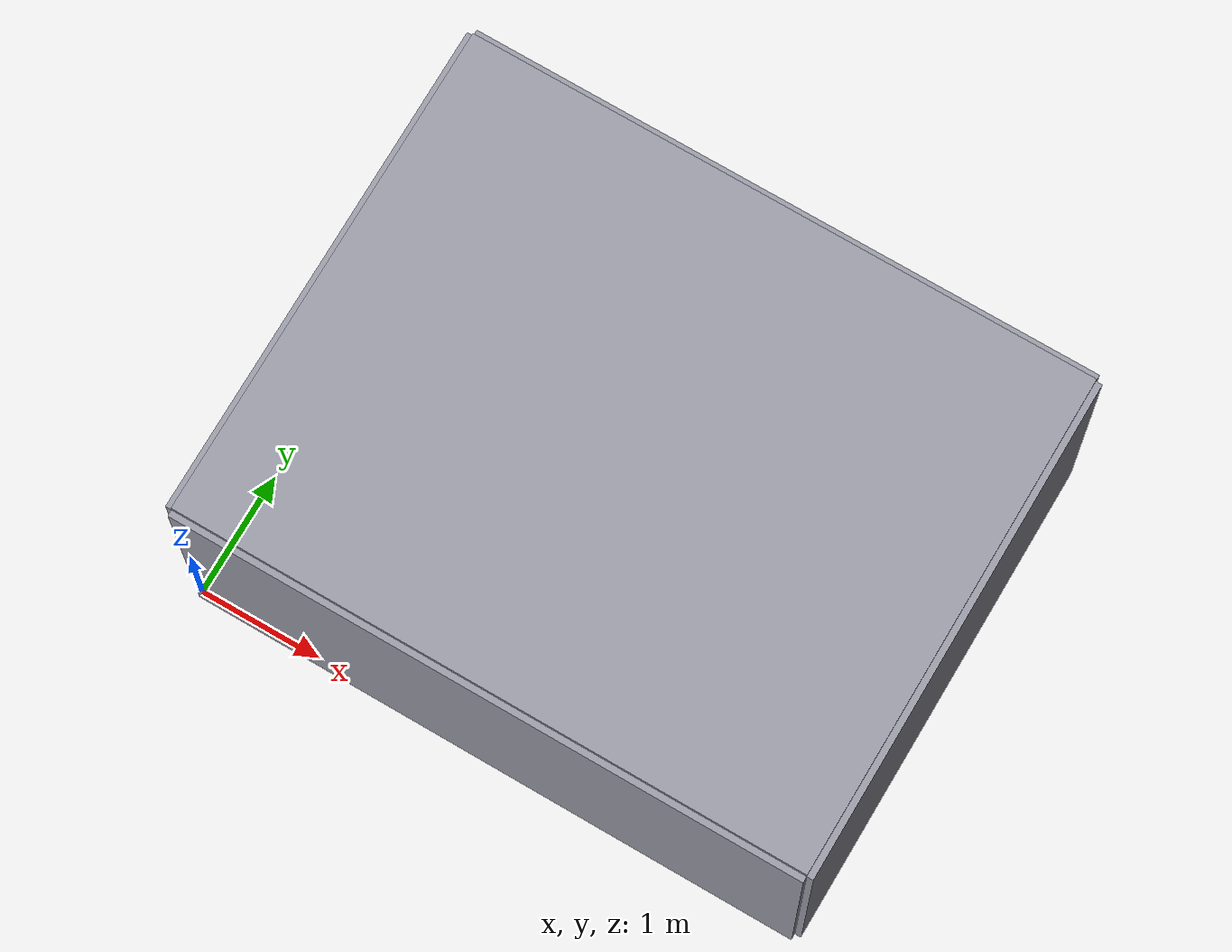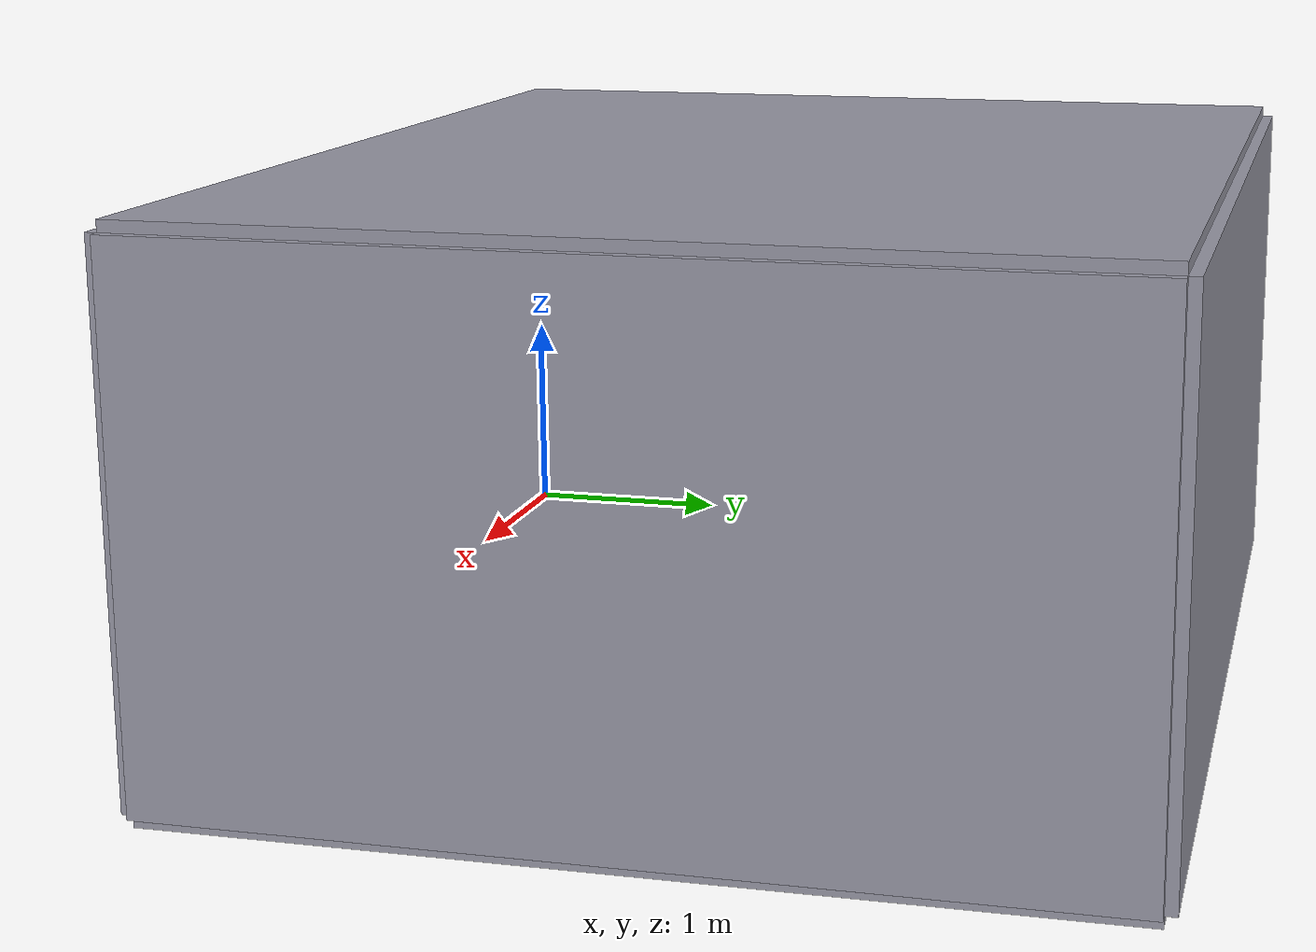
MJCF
<mujoco model="embodied-recon-mini">
  <compiler angle="radian" autolimits="true"/>
  <option timestep="0.002" gravity="0 0 -9.81" integrator="implicitfast"/>
  <default>
    <default class="scene"><geom contype="1" conaffinity="1" friction="0.8 0.005 0.0001" rgba="0.6 0.6 0.65 1"/></default>
    <default class="drone"><geom contype="1" conaffinity="1" friction="0.6 0.005 0.0001" rgba="0.55 0.35 0.9 1"/></default>
  </default>
  <worldbody>
    <geom name="counter-left" class="scene" type="box" pos="0.675 3.7 0.45" size="0.275 0.3 0.45"/>
    <geom name="sink-basin" class="scene" type="box" pos="1.275 3.7 0.36" size="0.325 0.3 0.36"/>
    <geom name="counter-right" class="scene" type="box" pos="2.6 3.7 0.45" size="1 0.3 0.45"/>
    <geom name="fridge-base" class="scene" type="box" pos="4.1 3.6 0.2" size="0.4 0.4 0.2"/>
    <geom name="fridge-left-wall" class="scene" type="box" pos="3.725 3.6 0.9" size="0.025 0.4 0.9"/>
    <geom name="fridge-right-wall" class="scene" type="box" pos="4.475 3.6 0.9" size="0.025 0.4 0.9"/>
    <geom name="fridge-back" class="scene" type="box" pos="4.1 3.975 0.9" size="0.4 0.025 0.9"/>
    <geom name="fridge-top" class="scene" type="box" pos="4.1 3.6 1.775" size="0.4 0.4 0.025"/>
    <geom name="fridge-shelf-slab" class="scene" type="box" pos="4.1 3.625 1.19" size="0.35 0.325 0.01"/>
    <geom name="island" class="scene" type="box" pos="2.4 2 0.45" size="0.6 0.4 0.45"/>
    <geom name="fridge-door" class="scene" type="box" pos="3.725 3.175 0.9" size="0.025 0.025 0.9"/>
    <geom name="fridge-door.1" class="scene" type="box" pos="3.775 3.175 0.9" size="0.025 0.025 0.9"/>
    <geom name="fridge-door.2" class="scene" type="box" pos="3.825 3.175 0.9" size="0.025 0.025 0.9"/>
    <geom name="fridge-door.3" class="scene" type="box" pos="3.875 3.175 0.9" size="0.025 0.025 0.9"/>
    <geom name="fridge-door.4" class="scene" type="box" pos="3.925 3.175 0.9" size="0.025 0.025 0.9"/>
    <geom name="fridge-door.5" class="scene" type="box" pos="3.975 3.175 0.9" size="0.025 0.025 0.9"/>
    <geom name="fridge-door.6" class="scene" type="box" pos="4.025 3.175 0.9" size="0.025 0.025 0.9"/>
    <geom name="fridge-door.7" class="scene" type="box" pos="4.075 3.175 0.9" size="0.025 0.025 0.9"/>
    <geom name="fridge-door.8" class="scene" type="box" pos="4.125 3.175 0.9" size="0.025 0.025 0.9"/>
    <geom name="fridge-door.9" class="scene" type="box" pos="4.175 3.175 0.9" size="0.025 0.025 0.9"/>
    <geom name="fridge-door.10" class="scene" type="box" pos="4.225 3.175 0.9" size="0.025 0.025 0.9"/>
    <geom name="fridge-door.11" class="scene" type="box" pos="4.275 3.175 0.9" size="0.025 0.025 0.9"/>
    <geom name="fridge-door.12" class="scene" type="box" pos="4.325 3.175 0.9" size="0.025 0.025 0.9"/>
    <geom name="fridge-door.13" class="scene" type="box" pos="4.375 3.175 0.9" size="0.025 0.025 0.9"/>
    <geom name="fridge-door.14" class="scene" type="box" pos="4.425 3.175 0.9" size="0.025 0.025 0.9"/>
    <geom name="plate-1" class="scene" type="box" pos="1.1 3.56 0.73" size="0.13 0.13 0.01"/>
    <geom name="plate-2" class="scene" type="box" pos="1.43 3.7 0.73" size="0.13 0.13 0.01"/>
    <geom name="mug-1" class="scene" type="box" pos="1.1 3.8 0.77" size="0.045 0.045 0.05"/>
    <geom name="milk-1" class="scene" type="box" pos="4.3 3.45 1.3" size="0.035 0.035 0.1"/>
    <geom name="floor" class="scene" type="box" pos="2.5 2 -0.025" size="2.5 2 0.025"/>
    <geom name="wall-south" class="scene" type="box" pos="2.5 -0.025 1.15" size="2.5 0.025 1.15"/>
    <geom name="wall-north" class="scene" type="box" pos="2.5 4.025 1.15" size="2.5 0.025 1.15"/>
    <geom name="wall-west" class="scene" type="box" pos="-0.025 2 1.15" size="0.025 2 1.15"/>
    <geom name="wall-east" class="scene" type="box" pos="5.025 2 1.15" size="0.025 2 1.15"/>
    <geom name="ceiling" class="scene" type="box" pos="2.5 2 2.325" size="2.5 2 0.025"/>
    <body name="drone" pos="0.6 0.6 0.03" quat="1 0 0 0">
      <freejoint name="drone-free"/>
      <inertial pos="0 0 0" mass="0.746" diaginertia="0.002603 0.002603 0.005206"/>
      <geom name="drone-hull" class="drone" type="box" pos="0 0 0" size="0.178124 0.178124 0.03"/>
      <site name="rotor-0" pos="0.091924 0.091924 0" size="0.01"/>
      <site name="rotor-1" pos="-0.091924 0.091924 0" size="0.01"/>
      <site name="rotor-2" pos="-0.091924 -0.091924 0" size="0.01"/>
      <site name="rotor-3" pos="0.091924 -0.091924 0" size="0.01"/>
      <site name="ring" pos="0 0 0" size="0.005"/>
      <site name="zenith" pos="0 0 0" size="0.005"/>
      <site name="nadir" pos="0 0 -0.02" size="0.005"/>
      <site name="depth-camera" pos="0 0 -0.02" size="0.005"/>
    </body>
  </worldbody>
  <actuator>
    <motor name="motor-0" site="rotor-0" gear="0 0 1 0 0 0.012" ctrllimited="true" ctrlrange="0 3.65913"/>
    <motor name="motor-1" site="rotor-1" gear="0 0 1 0 0 -0.012" ctrllimited="true" ctrlrange="0 3.65913"/>
    <motor name="motor-2" site="rotor-2" gear="0 0 1 0 0 0.012" ctrllimited="true" ctrlrange="0 3.65913"/>
    <motor name="motor-3" site="rotor-3" gear="0 0 1 0 0 -0.012" ctrllimited="true" ctrlrange="0 3.65913"/>
  </actuator>
  <sensor>
    <framepos name="drone-pos" objtype="body" objname="drone"/>
    <framequat name="drone-quat" objtype="body" objname="drone"/>
    <framelinvel name="drone-vel" objtype="body" objname="drone"/>
    <frameangvel name="drone-angvel" objtype="body" objname="drone"/>
  </sensor>
</mujoco>
